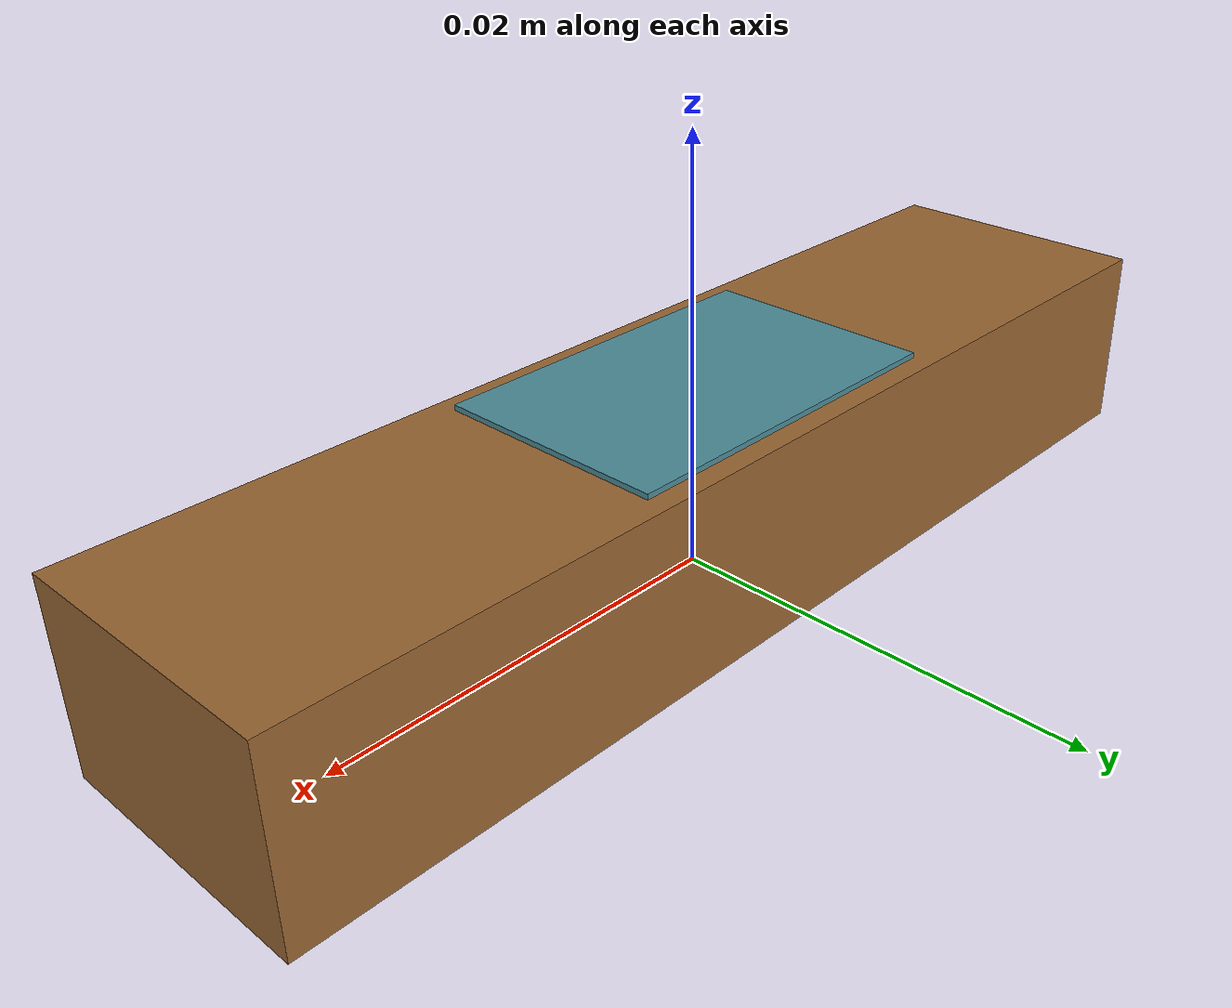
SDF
<?xml version="1.0" ?>
<sdf version="1.6">
  <model name="jenga">
    <pose>0 0 0 0 0 0</pose>

    <link name="body">
      <pose>0 0 0 0 0 0</pose>

      <inertial>
        <mass>0.0073</mass>
        <inertia>
          <ixx>7.604166666666669e-07</ixx>
          <ixy>0</ixy>
          <ixz>0</ixz>
          <iyy>7.604166666666669e-07</iyy>
          <iyz>0</iyz>
          <izz>7.604166666666669e-07</izz>
        </inertia>
      </inertial>

      <collision name="collision">
        <pose>0 0 0.00445 0 0 0</pose>
        <geometry>
          <box>
            <size>0.052 0.013 0.0089</size>
          </box>
        </geometry>
        <surface>
          <contact>
            <poissons_ratio>0.347</poissons_ratio>
            <elastic_modulus>8.8e+09</elastic_modulus>
            <ode>
              <kp>100000</kp>
              <kd>100</kd>
              <max_vel>100.0</max_vel>
              <min_depth>0.001</min_depth>
            </ode>
          </contact>
          <friction>
            <torsional>
              <coefficient>1.0</coefficient>
              <use_patch_radius>0</use_patch_radius>
              <surface_radius>0.01</surface_radius>
            </torsional>
          </friction>
        </surface>
      </collision>

      <visual name="visual">
        <pose>0 0 0.00445 0 0 0</pose>
        <geometry>
          <box>
            <size>0.052 0.013 0.0089</size>
          </box>
        </geometry>
        <material>
          <ambient>0.6 0.4 0.2 1</ambient>
          <diffuse>0.6 0.4 0.2 1</diffuse>
          <specular>0.05 0.05 0.05 1</specular>
        </material>
      </visual>

      <visual name="top_label">
        <pose>0 0 0.0089 0 0 0</pose>
        <geometry>
          <box>
            <size>0.017 0.011 0.0005</size>
          </box>
        </geometry>
        <material>
          <pbr>
            <metal>
              <albedo>0.30 0.55 0.60 1</albedo>
              <metalness>0.9</metalness>
              <roughness>0.2</roughness>
            </metal>
          </pbr>
          <ambient>0.25 0.45 0.50 1</ambient>
          <diffuse>0.30 0.55 0.60 1</diffuse>
          <specular>0.6 0.6 0.6 1</specular>
        </material>
      </visual>
    </link>

    <plugin filename="ignition-gazebo-pose-publisher-system"
            name="ignition::gazebo::systems::PosePublisher">
      <publish_link_pose>false</publish_link_pose>
      <publish_visual_pose>false</publish_visual_pose>
      <publish_nested_model_pose>true</publish_nested_model_pose>
      <use_pose_vector_msg>true</use_pose_vector_msg>
      <update_frequency>100</update_frequency>
    </plugin>

  </model>
</sdf>
